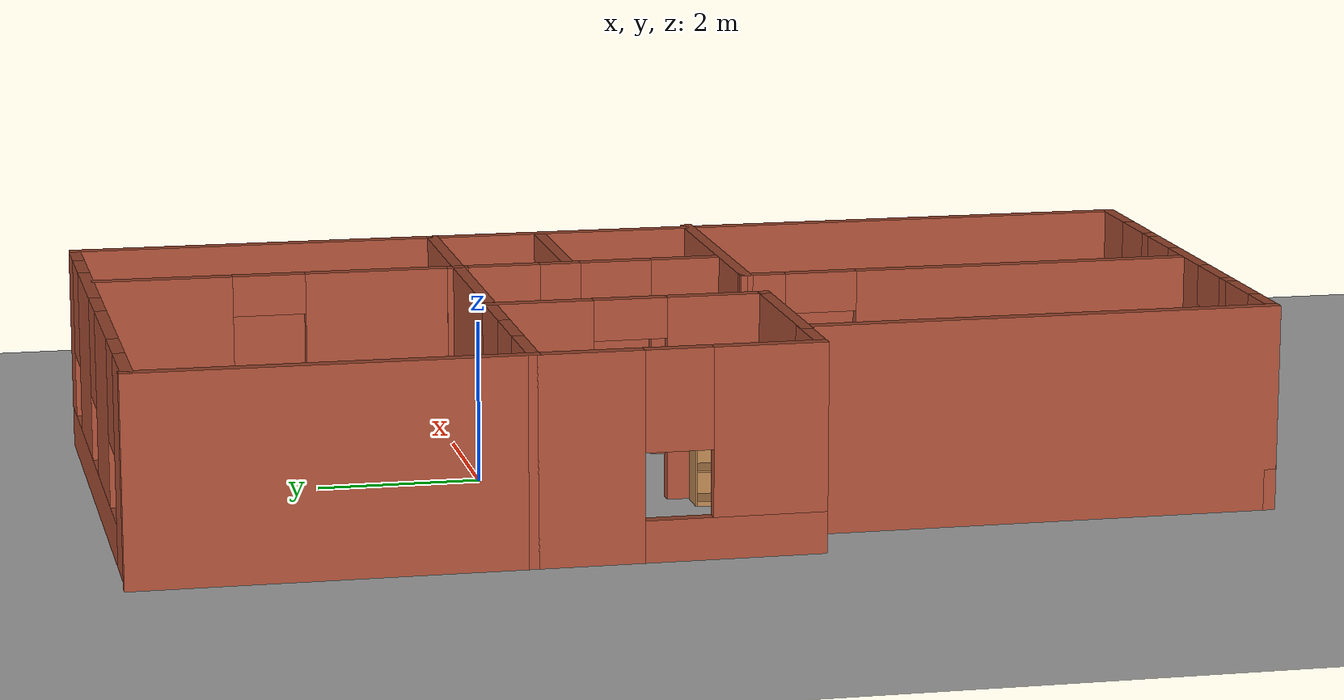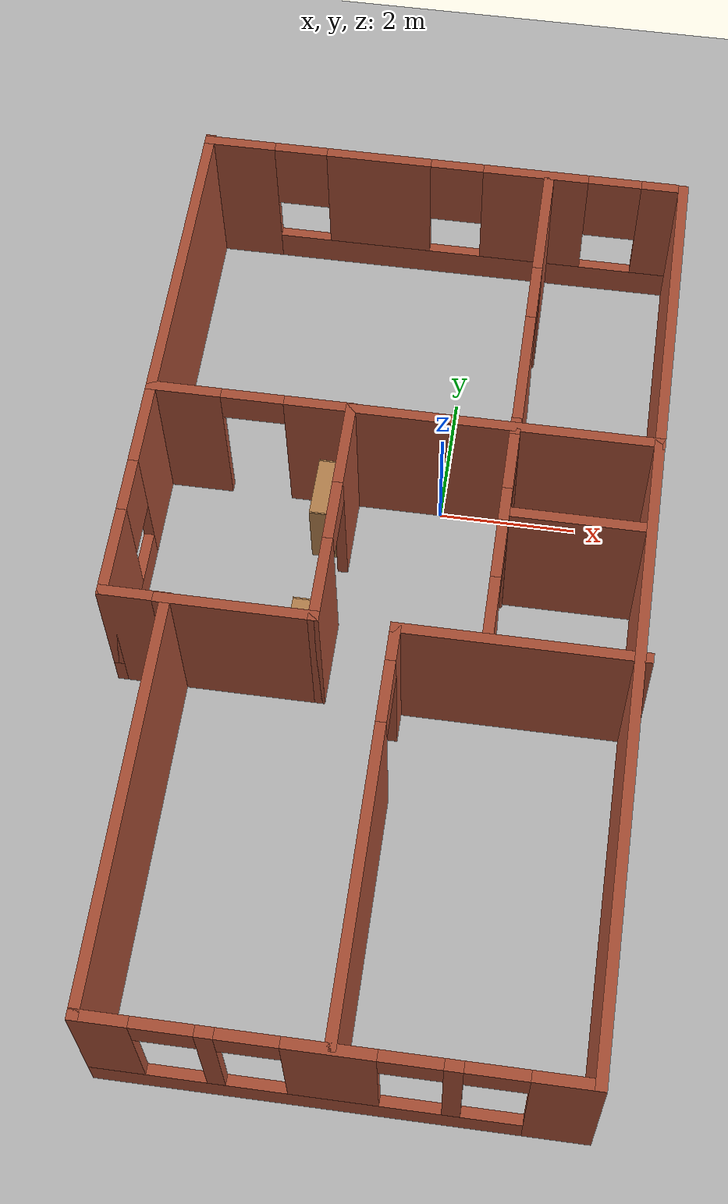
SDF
<sdf version="1.7">
 <world name="MyWorld3">
  <include><uri>model://ground_plane</uri></include>
  <include><uri>model://sun</uri></include>
  <gravity>0 0 -9.8</gravity>
  <magnetic_field>6e-06 2.3e-05 -4.2e-05</magnetic_field>
  <atmosphere type="adiabatic"/>
  <physics type="ode">
   <max_step_size>0.001</max_step_size>
   <real_time_factor>1</real_time_factor>
   <real_time_update_rate>1000</real_time_update_rate>
  </physics>
  <scene><ambient>0.4 0.4 0.4 1</ambient><background>0.7 0.7 0.7 1</background><shadows>true</shadows></scene>
  <audio><device>default</device></audio>
  <spherical_coordinates>
   <surface_model>EARTH_WGS84</surface_model>
   <latitude_deg>0</latitude_deg>
   <longitude_deg>0</longitude_deg>
   <elevation>0</elevation>
   <heading_deg>0</heading_deg>
  </spherical_coordinates>
  <model name="MyWorld3">
   <pose>-0.571805 0.237832 0 0 -0 0</pose>
   <link name="Wall_0">
    <pose>-2.17233 -0.155102 0 0 -0 0.000109</pose>
    <visual name="Wall_0_Visual_0">
     <pose>-0.971919 0 1.25 0 -0 0</pose>
     <geometry><box><size>1.07872 0.15 2.5</size></box></geometry>
     <material>
      <script><uri>file://media/materials/scripts/gazebo.material</uri><name>Gazebo/Bricks</name></script>
      <ambient>1 1 1 1</ambient>
     </material>
     <meta><layer>0</layer></meta>
    </visual>
    <collision name="Wall_0_Collision_0">
     <geometry><box><size>1.07872 0.15 2.5</size></box></geometry>
     <pose>-0.971919 0 1.25 0 -0 0</pose>
    </collision>
    <visual name="Wall_0_Visual_1">
     <pose>0.989359 0 1.25 0 -0 0</pose>
     <geometry><box><size>1.04384 0.15 2.5</size></box></geometry>
     <material>
      <script><uri>file://media/materials/scripts/gazebo.material</uri><name>Gazebo/Bricks</name></script>
      <ambient>1 1 1 1</ambient>
     </material>
     <meta><layer>0</layer></meta>
    </visual>
    <collision name="Wall_0_Collision_1">
     <geometry><box><size>1.04384 0.15 2.5</size></box></geometry>
     <pose>0.989359 0 1.25 0 -0 0</pose>
    </collision>
    <visual name="Wall_0_Visual_2">
     <pose>0.01744 0 2.25 0 -0 0</pose>
     <geometry><box><size>0.9 0.15 0.5</size></box></geometry>
     <material>
      <script><uri>file://media/materials/scripts/gazebo.material</uri><name>Gazebo/Bricks</name></script>
      <ambient>1 1 1 1</ambient>
     </material>
     <meta><layer>0</layer></meta>
    </visual>
    <collision name="Wall_0_Collision_2">
     <geometry><box><size>0.9 0.15 0.5</size></box></geometry>
     <pose>0.01744 0 2.25 0 -0 0</pose>
    </collision>
    <inertial>
     <mass>1</mass>
     <inertia><ixx>1</ixx><ixy>0</ixy><ixz>0</ixz><iyy>1</iyy><iyz>0</iyz><izz>1</izz></inertia>
    </inertial>
   </link>
   <link name="Wall_12">
    <pose>-3.60861 -1.83026 0 0 0 -1.5708</pose>
    <visual name="Wall_12_Visual_0">
     <pose>-1.07365 0 1.25 0 -0 0</pose>
     <geometry><box><size>1.3527 0.15 2.5</size></box></geometry>
     <material>
      <script><uri>file://media/materials/scripts/gazebo.material</uri><name>Gazebo/Bricks</name></script>
      <ambient>1 1 1 1</ambient>
     </material>
     <meta><layer>0</layer></meta>
    </visual>
    <collision name="Wall_12_Collision_0">
     <geometry><box><size>1.3527 0.15 2.5</size></box></geometry>
     <pose>-1.07365 0 1.25 0 -0 0</pose>
    </collision>
    <visual name="Wall_12_Visual_1">
     <pose>0.676352 0 0.25 0 -0 0</pose>
     <geometry><box><size>2.1473 0.15 0.5</size></box></geometry>
     <material>
      <script><uri>file://media/materials/scripts/gazebo.material</uri><name>Gazebo/Bricks</name></script>
      <ambient>1 1 1 1</ambient>
     </material>
     <meta><layer>0</layer></meta>
    </visual>
    <collision name="Wall_12_Collision_1">
     <geometry><box><size>2.1473 0.15 0.5</size></box></geometry>
     <pose>0.676352 0 0.25 0 -0 0</pose>
    </collision>
    <visual name="Wall_12_Visual_2">
     <pose>1.07635 0 1.5 0 -0 0</pose>
     <geometry><box><size>1.3473 0.15 2</size></box></geometry>
     <material>
      <script><uri>file://media/materials/scripts/gazebo.material</uri><name>Gazebo/Bricks</name></script>
      <ambient>1 1 1 1</ambient>
     </material>
     <meta><layer>0</layer></meta>
    </visual>
    <collision name="Wall_12_Collision_2">
     <geometry><box><size>1.3473 0.15 2</size></box></geometry>
     <pose>1.07635 0 1.5 0 -0 0</pose>
    </collision>
    <visual name="Wall_12_Visual_3">
     <pose>0.002703 0 1.9 0 -0 0</pose>
     <geometry><box><size>0.8 0.15 1.2</size></box></geometry>
     <material>
      <script><uri>file://media/materials/scripts/gazebo.material</uri><name>Gazebo/Bricks</name></script>
      <ambient>1 1 1 1</ambient>
     </material>
     <meta><layer>0</layer></meta>
    </visual>
    <collision name="Wall_12_Collision_3">
     <geometry><box><size>0.8 0.15 1.2</size></box></geometry>
     <pose>0.002703 0 1.9 0 -0 0</pose>
    </collision>
    <inertial>
     <mass>1</mass>
     <inertia><ixx>1</ixx><ixy>0</ixy><ixz>0</ixz><iyy>1</iyy><iyz>0</iyz><izz>1</izz></inertia>
    </inertial>
   </link>
   <link name="Wall_13">
    <collision name="Wall_13_Collision">
     <geometry><box><size>1 0.15 2.5</size></box></geometry>
     <pose>0 0 1.25 0 -0 0</pose>
    </collision>
    <visual name="Wall_13_Visual">
     <pose>0 0 1.25 0 -0 0</pose>
     <geometry><box><size>1 0.15 2.5</size></box></geometry>
     <material>
      <script><uri>file://media/materials/scripts/gazebo.material</uri><name>Gazebo/Bricks</name></script>
      <ambient>1 1 1 1</ambient>
     </material>
     <meta><layer>0</layer></meta>
    </visual>
    <pose>-3.18361 -3.50526 0 0 -0 0</pose>
    <inertial>
     <mass>1</mass>
     <inertia><ixx>1</ixx><ixy>0</ixy><ixz>0</ixz><iyy>1</iyy><iyz>0</iyz><izz>1</izz></inertia>
    </inertial>
   </link>
   <link name="Wall_3">
    <collision name="Wall_3_Collision">
     <geometry><box><size>4.75 0.15 2.5</size></box></geometry>
     <pose>0 0 1.25 0 -0 0</pose>
    </collision>
    <visual name="Wall_3_Visual">
     <pose>0 0 1.25 0 -0 0</pose>
     <geometry><box><size>4.75 0.15 2.5</size></box></geometry>
     <material>
      <script><uri>file://media/materials/scripts/gazebo.material</uri><name>Gazebo/Bricks</name></script>
      <ambient>1 1 1 1</ambient>
     </material>
     <meta><layer>0</layer></meta>
    </visual>
    <pose>-3.60861 2.14474 0 0 -0 1.5708</pose>
    <inertial>
     <mass>1</mass>
     <inertia><ixx>1</ixx><ixy>0</ixy><ixz>0</ixz><iyy>1</iyy><iyz>0</iyz><izz>1</izz></inertia>
    </inertial>
   </link>
   <link name="Wall_5">
    <collision name="Wall_5_Collision">
     <geometry><box><size>4.75 0.15 2.5</size></box></geometry>
     <pose>0 0 1.25 0 -0 0</pose>
    </collision>
    <visual name="Wall_5_Visual">
     <pose>0 0 1.25 0 -0 0</pose>
     <geometry><box><size>4.75 0.15 2.5</size></box></geometry>
     <material>
      <script><uri>file://media/materials/scripts/gazebo.material</uri><name>Gazebo/Bricks</name></script>
      <ambient>1 1 1 1</ambient>
     </material>
     <meta><layer>0</layer></meta>
    </visual>
    <pose>3.60861 2.11175 0 0 -0 1.5708</pose>
    <inertial>
     <mass>1</mass>
     <inertia><ixx>1</ixx><ixy>0</ixy><ixz>0</ixz><iyy>1</iyy><iyz>0</iyz><izz>1</izz></inertia>
    </inertial>
   </link>
   <link name="Wall_7">
    <pose>-0.072329 4.42218 0 0 -0 0</pose>
    <visual name="Wall_7_Visual_0">
     <pose>-3.06948 0 1.25 0 -0 0</pose>
     <geometry><box><size>1.08359 0.15 2.5</size></box></geometry>
     <material>
      <script><uri>file://media/materials/scripts/gazebo.material</uri><name>Gazebo/Bricks</name></script>
      <ambient>1 1 1 1</ambient>
     </material>
     <meta><layer>0</layer></meta>
    </visual>
    <collision name="Wall_7_Collision_0">
     <geometry><box><size>1.08359 0.15 2.5</size></box></geometry>
     <pose>-3.06948 0 1.25 0 -0 0</pose>
    </collision>
    <visual name="Wall_7_Visual_1">
     <pose>0.541795 0 0.25 0 -0 0</pose>
     <geometry><box><size>6.13897 0.15 0.5</size></box></geometry>
     <material>
      <script><uri>file://media/materials/scripts/gazebo.material</uri><name>Gazebo/Bricks</name></script>
      <ambient>1 1 1 1</ambient>
     </material>
     <meta><layer>0</layer></meta>
    </visual>
    <collision name="Wall_7_Collision_1">
     <geometry><box><size>6.13897 0.15 0.5</size></box></geometry>
     <pose>0.541795 0 0.25 0 -0 0</pose>
    </collision>
    <visual name="Wall_7_Visual_2">
     <pose>-0.932209 0 1.5 0 -0 0</pose>
     <geometry><box><size>1.59096 0.15 2</size></box></geometry>
     <material>
      <script><uri>file://media/materials/scripts/gazebo.material</uri><name>Gazebo/Bricks</name></script>
      <ambient>1 1 1 1</ambient>
     </material>
     <meta><layer>0</layer></meta>
    </visual>
    <collision name="Wall_7_Collision_2">
     <geometry><box><size>1.59096 0.15 2</size></box></geometry>
     <pose>-0.932209 0 1.5 0 -0 0</pose>
    </collision>
    <visual name="Wall_7_Visual_3">
     <pose>1.45875 0 1.5 0 -0 0</pose>
     <geometry><box><size>1.59096 0.15 2</size></box></geometry>
     <material>
      <script><uri>file://media/materials/scripts/gazebo.material</uri><name>Gazebo/Bricks</name></script>
      <ambient>1 1 1 1</ambient>
     </material>
     <meta><layer>0</layer></meta>
    </visual>
    <collision name="Wall_7_Collision_3">
     <geometry><box><size>1.59096 0.15 2</size></box></geometry>
     <pose>1.45875 0 1.5 0 -0 0</pose>
    </collision>
    <visual name="Wall_7_Visual_4">
     <pose>3.33275 0 1.5 0 -0 0</pose>
     <geometry><box><size>0.557048 0.15 2</size></box></geometry>
     <material>
      <script><uri>file://media/materials/scripts/gazebo.material</uri><name>Gazebo/Bricks</name></script>
      <ambient>1 1 1 1</ambient>
     </material>
     <meta><layer>0</layer></meta>
    </visual>
    <collision name="Wall_7_Collision_4">
     <geometry><box><size>0.557048 0.15 2</size></box></geometry>
     <pose>3.33275 0 1.5 0 -0 0</pose>
    </collision>
    <visual name="Wall_7_Visual_5">
     <pose>-2.12769 0 1.9 0 -0 0</pose>
     <geometry><box><size>0.8 0.15 1.2</size></box></geometry>
     <material>
      <script><uri>file://media/materials/scripts/gazebo.material</uri><name>Gazebo/Bricks</name></script>
      <ambient>1 1 1 1</ambient>
     </material>
     <meta><layer>0</layer></meta>
    </visual>
    <collision name="Wall_7_Collision_5">
     <geometry><box><size>0.8 0.15 1.2</size></box></geometry>
     <pose>-2.12769 0 1.9 0 -0 0</pose>
    </collision>
    <visual name="Wall_7_Visual_6">
     <pose>0.263271 0 1.9 0 -0 0</pose>
     <geometry><box><size>0.8 0.15 1.2</size></box></geometry>
     <material>
      <script><uri>file://media/materials/scripts/gazebo.material</uri><name>Gazebo/Bricks</name></script>
      <ambient>1 1 1 1</ambient>
     </material>
     <meta><layer>0</layer></meta>
    </visual>
    <collision name="Wall_7_Collision_6">
     <geometry><box><size>0.8 0.15 1.2</size></box></geometry>
     <pose>0.263271 0 1.9 0 -0 0</pose>
    </collision>
    <visual name="Wall_7_Visual_7">
     <pose>2.65423 0 1.9 0 -0 0</pose>
     <geometry><box><size>0.8 0.15 1.2</size></box></geometry>
     <material>
      <script><uri>file://media/materials/scripts/gazebo.material</uri><name>Gazebo/Bricks</name></script>
      <ambient>1 1 1 1</ambient>
     </material>
     <meta><layer>0</layer></meta>
    </visual>
    <collision name="Wall_7_Collision_7">
     <geometry><box><size>0.8 0.15 1.2</size></box></geometry>
     <pose>2.65423 0 1.9 0 -0 0</pose>
    </collision>
    <inertial>
     <mass>1</mass>
     <inertia><ixx>1</ixx><ixy>0</ixy><ixz>0</ixz><iyy>1</iyy><iyz>0</iyz><izz>1</izz></inertia>
    </inertial>
   </link>
   <link name="Wall_9">
    <pose>1.58943 2.12546 0 0 -0 1.5708</pose>
    <visual name="Wall_9_Visual_0">
     <pose>-1.30969 0 1.25 0 -0 0</pose>
     <geometry><box><size>1.88062 0.15 2.5</size></box></geometry>
     <material>
      <script><uri>file://media/materials/scripts/gazebo.material</uri><name>Gazebo/Bricks</name></script>
      <ambient>1 1 1 1</ambient>
     </material>
     <meta><layer>0</layer></meta>
    </visual>
    <collision name="Wall_9_Collision_0">
     <geometry><box><size>1.88062 0.15 2.5</size></box></geometry>
     <pose>-1.30969 0 1.25 0 -0 0</pose>
    </collision>
    <visual name="Wall_9_Visual_1">
     <pose>1.39031 0 1.25 0 -0 0</pose>
     <geometry><box><size>1.71938 0.15 2.5</size></box></geometry>
     <material>
      <script><uri>file://media/materials/scripts/gazebo.material</uri><name>Gazebo/Bricks</name></script>
      <ambient>1 1 1 1</ambient>
     </material>
     <meta><layer>0</layer></meta>
    </visual>
    <collision name="Wall_9_Collision_1">
     <geometry><box><size>1.71938 0.15 2.5</size></box></geometry>
     <pose>1.39031 0 1.25 0 -0 0</pose>
    </collision>
    <visual name="Wall_9_Visual_2">
     <pose>0.080623 0 2.25 0 -0 0</pose>
     <geometry><box><size>0.9 0.15 0.5</size></box></geometry>
     <material>
      <script><uri>file://media/materials/scripts/gazebo.material</uri><name>Gazebo/Bricks</name></script>
      <ambient>1 1 1 1</ambient>
     </material>
     <meta><layer>0</layer></meta>
    </visual>
    <collision name="Wall_9_Collision_2">
     <geometry><box><size>0.9 0.15 0.5</size></box></geometry>
     <pose>0.080623 0 2.25 0 -0 0</pose>
    </collision>
    <inertial>
     <mass>1</mass>
     <inertia><ixx>1</ixx><ixy>0</ixy><ixz>0</ixz><iyy>1</iyy><iyz>0</iyz><izz>1</izz></inertia>
    </inertial>
   </link>
   <static>true</static>
  </model>
  <model name="MyWorld2">
   <pose>-0.141275 -4.43804 0 0 -0 0</pose>
   <link name="Wall_0">
    <collision name="Wall_0_Collision">
     <geometry><box><size>2.25 0.15 2.5</size></box></geometry>
     <pose>0 0 1.25 0 -0 0</pose>
    </collision>
    <visual name="Wall_0_Visual">
     <pose>0 0 1.25 0 -0 0</pose>
     <geometry><box><size>2.25 0.15 2.5</size></box></geometry>
     <material>
      <script><uri>file://media/materials/scripts/gazebo.material</uri><name>Gazebo/Bricks</name></script>
      <ambient>1 1 1 1</ambient>
     </material>
     <meta><layer>0</layer></meta>
    </visual>
    <pose>-2.22676 1.16321 0 0 -0 0</pose>
    <inertial>
     <mass>1</mass>
     <inertia><ixx>1</ixx><ixy>0</ixy><ixz>0</ixz><iyy>1</iyy><iyz>0</iyz><izz>1</izz></inertia>
    </inertial>
   </link>
   <link name="Wall_1">
    <pose>-1.17676 2.83821 0 0 -0 1.5708</pose>
    <visual name="Wall_1_Visual_0">
     <pose>-1.10743 0 1.25 0 -0 0</pose>
     <geometry><box><size>1.28514 0.15 2.5</size></box></geometry>
     <material>
      <script><uri>file://media/materials/scripts/gazebo.material</uri><name>Gazebo/Bricks</name></script>
      <ambient>1 1 1 1</ambient>
     </material>
     <meta><layer>0</layer></meta>
    </visual>
    <collision name="Wall_1_Collision_0">
     <geometry><box><size>1.28514 0.15 2.5</size></box></geometry>
     <pose>-1.10743 0 1.25 0 -0 0</pose>
    </collision>
    <visual name="Wall_1_Visual_1">
     <pose>1.09257 0 1.25 0 -0 0</pose>
     <geometry><box><size>1.31486 0.15 2.5</size></box></geometry>
     <material>
      <script><uri>file://media/materials/scripts/gazebo.material</uri><name>Gazebo/Bricks</name></script>
      <ambient>1 1 1 1</ambient>
     </material>
     <meta><layer>0</layer></meta>
    </visual>
    <collision name="Wall_1_Collision_1">
     <geometry><box><size>1.31486 0.15 2.5</size></box></geometry>
     <pose>1.09257 0 1.25 0 -0 0</pose>
    </collision>
    <visual name="Wall_1_Visual_2">
     <pose>-0.014862 0 2.25 0 -0 0</pose>
     <geometry><box><size>0.9 0.15 0.5</size></box></geometry>
     <material>
      <script><uri>file://media/materials/scripts/gazebo.material</uri><name>Gazebo/Bricks</name></script>
      <ambient>1 1 1 1</ambient>
     </material>
     <meta><layer>0</layer></meta>
    </visual>
    <collision name="Wall_1_Collision_2">
     <geometry><box><size>0.9 0.15 0.5</size></box></geometry>
     <pose>-0.014862 0 2.25 0 -0 0</pose>
    </collision>
    <inertial>
     <mass>1</mass>
     <inertia><ixx>1</ixx><ixy>0</ixy><ixz>0</ixz><iyy>1</iyy><iyz>0</iyz><izz>1</izz></inertia>
    </inertial>
   </link>
   <link name="Wall_10">
    <collision name="Wall_10_Collision">
     <geometry><box><size>3.5 0.15 2.5</size></box></geometry>
     <pose>0 0 1.25 0 -0 0</pose>
    </collision>
    <visual name="Wall_10_Visual">
     <pose>0 0 1.25 0 -0 0</pose>
     <geometry><box><size>3.5 0.15 2.5</size></box></geometry>
     <material>
      <script><uri>file://media/materials/scripts/gazebo.material</uri><name>Gazebo/Bricks</name></script>
      <ambient>1 1 1 1</ambient>
     </material>
     <meta><layer>0</layer></meta>
    </visual>
    <pose>1.60176 1.1345 0 0 -0 0</pose>
    <inertial>
     <mass>1</mass>
     <inertia><ixx>1</ixx><ixy>0</ixy><ixz>0</ixz><iyy>1</iyy><iyz>0</iyz><izz>1</izz></inertia>
    </inertial>
   </link>
   <link name="Wall_12">
    <pose>1.15028 2.91224 0 0 0 -1.5708</pose>
    <visual name="Wall_12_Visual_0">
     <pose>-1.61566 0 1.25 0 -0 0</pose>
     <geometry><box><size>0.268688 0.15 2.5</size></box></geometry>
     <material>
      <script><uri>file://media/materials/scripts/gazebo.material</uri><name>Gazebo/Bricks</name></script>
      <ambient>1 1 1 1</ambient>
     </material>
     <meta><layer>0</layer></meta>
    </visual>
    <collision name="Wall_12_Collision_0">
     <geometry><box><size>0.268688 0.15 2.5</size></box></geometry>
     <pose>-1.61566 0 1.25 0 -0 0</pose>
    </collision>
    <visual name="Wall_12_Visual_1">
     <pose>-0.323256 0 1.25 0 -0 0</pose>
     <geometry><box><size>0.516113 0.15 2.5</size></box></geometry>
     <material>
      <script><uri>file://media/materials/scripts/gazebo.material</uri><name>Gazebo/Bricks</name></script>
      <ambient>1 1 1 1</ambient>
     </material>
     <meta><layer>0</layer></meta>
    </visual>
    <collision name="Wall_12_Collision_1">
     <geometry><box><size>0.516113 0.15 2.5</size></box></geometry>
     <pose>-0.323256 0 1.25 0 -0 0</pose>
    </collision>
    <visual name="Wall_12_Visual_2">
     <pose>1.2924 0 1.25 0 -0 0</pose>
     <geometry><box><size>0.915199 0.15 2.5</size></box></geometry>
     <material>
      <script><uri>file://media/materials/scripts/gazebo.material</uri><name>Gazebo/Bricks</name></script>
      <ambient>1 1 1 1</ambient>
     </material>
     <meta><layer>0</layer></meta>
    </visual>
    <collision name="Wall_12_Collision_2">
     <geometry><box><size>0.915199 0.15 2.5</size></box></geometry>
     <pose>1.2924 0 1.25 0 -0 0</pose>
    </collision>
    <visual name="Wall_12_Visual_3">
     <pose>-1.03131 0 2.25 0 -0 0</pose>
     <geometry><box><size>0.9 0.15 0.5</size></box></geometry>
     <material>
      <script><uri>file://media/materials/scripts/gazebo.material</uri><name>Gazebo/Bricks</name></script>
      <ambient>1 1 1 1</ambient>
     </material>
     <meta><layer>0</layer></meta>
    </visual>
    <collision name="Wall_12_Collision_3">
     <geometry><box><size>0.9 0.15 0.5</size></box></geometry>
     <pose>-1.03131 0 2.25 0 -0 0</pose>
    </collision>
    <visual name="Wall_12_Visual_4">
     <pose>0.384801 0 2.25 0 -0 0</pose>
     <geometry><box><size>0.9 0.15 0.5</size></box></geometry>
     <material>
      <script><uri>file://media/materials/scripts/gazebo.material</uri><name>Gazebo/Bricks</name></script>
      <ambient>1 1 1 1</ambient>
     </material>
     <meta><layer>0</layer></meta>
    </visual>
    <collision name="Wall_12_Collision_4">
     <geometry><box><size>0.9 0.15 0.5</size></box></geometry>
     <pose>0.384801 0 2.25 0 -0 0</pose>
    </collision>
    <inertial>
     <mass>1</mass>
     <inertia><ixx>1</ixx><ixy>0</ixy><ixz>0</ixz><iyy>1</iyy><iyz>0</iyz><izz>1</izz></inertia>
    </inertial>
   </link>
   <link name="Wall_14">
    <collision name="Wall_14_Collision">
     <geometry><box><size>2 0.15 2.5</size></box></geometry>
     <pose>0 0 1.25 0 -0 0</pose>
    </collision>
    <visual name="Wall_14_Visual">
     <pose>0 0 1.25 0 -0 0</pose>
     <geometry><box><size>2 0.15 2.5</size></box></geometry>
     <material>
      <script><uri>file://media/materials/scripts/gazebo.material</uri><name>Gazebo/Bricks</name></script>
      <ambient>1 1 1 1</ambient>
     </material>
     <meta><layer>0</layer></meta>
    </visual>
    <pose>2.20616 3.11944 0 0 -0 0</pose>
    <inertial>
     <mass>1</mass>
     <inertia><ixx>1</ixx><ixy>0</ixy><ixz>0</ixz><iyy>1</iyy><iyz>0</iyz><izz>1</izz></inertia>
    </inertial>
   </link>
   <link name="Wall_2">
    <collision name="Wall_2_Collision">
     <geometry><box><size>4.5 0.15 2.5</size></box></geometry>
     <pose>0 0 1.25 0 -0 0</pose>
    </collision>
    <visual name="Wall_2_Visual">
     <pose>0 0 1.25 0 -0 0</pose>
     <geometry><box><size>4.5 0.15 2.5</size></box></geometry>
     <material>
      <script><uri>file://media/materials/scripts/gazebo.material</uri><name>Gazebo/Bricks</name></script>
      <ambient>1 1 1 1</ambient>
     </material>
     <meta><layer>0</layer></meta>
    </visual>
    <pose>0.998242 4.51321 0 0 -0 0</pose>
    <inertial>
     <mass>1</mass>
     <inertia><ixx>1</ixx><ixy>0</ixy><ixz>0</ixz><iyy>1</iyy><iyz>0</iyz><izz>1</izz></inertia>
    </inertial>
   </link>
   <link name="Wall_3">
    <collision name="Wall_3_Collision">
     <geometry><box><size>9.25 0.15 2.5</size></box></geometry>
     <pose>0 0 1.25 0 -0 0</pose>
    </collision>
    <visual name="Wall_3_Visual">
     <pose>0 0 1.25 0 -0 0</pose>
     <geometry><box><size>9.25 0.15 2.5</size></box></geometry>
     <material>
      <script><uri>file://media/materials/scripts/gazebo.material</uri><name>Gazebo/Bricks</name></script>
      <ambient>1 1 1 1</ambient>
     </material>
     <meta><layer>0</layer></meta>
    </visual>
    <pose>3.17336 -0.037017 0 0 0 -1.57077</pose>
    <inertial>
     <mass>1</mass>
     <inertia><ixx>1</ixx><ixy>0</ixy><ixz>0</ixz><iyy>1</iyy><iyz>0</iyz><izz>1</izz></inertia>
    </inertial>
   </link>
   <link name="Wall_4">
    <pose>-0.001516 -4.58724 0 0 -0 3.14159</pose>
    <visual name="Wall_4_Visual_0">
     <pose>-2.79876 0 1.25 0 -0 0</pose>
     <geometry><box><size>0.902483 0.15 2.5</size></box></geometry>
     <material>
      <script><uri>file://media/materials/scripts/gazebo.material</uri><name>Gazebo/Bricks</name></script>
      <ambient>1 1 1 1</ambient>
     </material>
     <meta><layer>0</layer></meta>
    </visual>
    <collision name="Wall_4_Collision_0">
     <geometry><box><size>0.902483 0.15 2.5</size></box></geometry>
     <pose>-2.79876 0 1.25 0 -0 0</pose>
    </collision>
    <visual name="Wall_4_Visual_1">
     <pose>0.451241 0 0.25 0 -0 0</pose>
     <geometry><box><size>5.59752 0.15 0.5</size></box></geometry>
     <material>
      <script><uri>file://media/materials/scripts/gazebo.material</uri><name>Gazebo/Bricks</name></script>
      <ambient>1 1 1 1</ambient>
     </material>
     <meta><layer>0</layer></meta>
    </visual>
    <collision name="Wall_4_Collision_1">
     <geometry><box><size>5.59752 0.15 0.5</size></box></geometry>
     <pose>0.451241 0 0.25 0 -0 0</pose>
    </collision>
    <visual name="Wall_4_Visual_2">
     <pose>-1.42872 0 1.5 0 -0 0</pose>
     <geometry><box><size>0.237586 0.15 2</size></box></geometry>
     <material>
      <script><uri>file://media/materials/scripts/gazebo.material</uri><name>Gazebo/Bricks</name></script>
      <ambient>1 1 1 1</ambient>
     </material>
     <meta><layer>0</layer></meta>
    </visual>
    <collision name="Wall_4_Collision_2">
     <geometry><box><size>0.237586 0.15 2</size></box></geometry>
     <pose>-1.42872 0 1.5 0 -0 0</pose>
    </collision>
    <visual name="Wall_4_Visual_3">
     <pose>0.075776 0 1.5 0 -0 0</pose>
     <geometry><box><size>1.17141 0.15 2</size></box></geometry>
     <material>
      <script><uri>file://media/materials/scripts/gazebo.material</uri><name>Gazebo/Bricks</name></script>
      <ambient>1 1 1 1</ambient>
     </material>
     <meta><layer>0</layer></meta>
    </visual>
    <collision name="Wall_4_Collision_3">
     <geometry><box><size>1.17141 0.15 2</size></box></geometry>
     <pose>0.075776 0 1.5 0 -0 0</pose>
    </collision>
    <visual name="Wall_4_Visual_4">
     <pose>1.58028 0 1.5 0 -0 0</pose>
     <geometry><box><size>0.237586 0.15 2</size></box></geometry>
     <material>
      <script><uri>file://media/materials/scripts/gazebo.material</uri><name>Gazebo/Bricks</name></script>
      <ambient>1 1 1 1</ambient>
     </material>
     <meta><layer>0</layer></meta>
    </visual>
    <collision name="Wall_4_Collision_4">
     <geometry><box><size>0.237586 0.15 2</size></box></geometry>
     <pose>1.58028 0 1.5 0 -0 0</pose>
    </collision>
    <visual name="Wall_4_Visual_5">
     <pose>2.87453 0 1.5 0 -0 0</pose>
     <geometry><box><size>0.750931 0.15 2</size></box></geometry>
     <material>
      <script><uri>file://media/materials/scripts/gazebo.material</uri><name>Gazebo/Bricks</name></script>
      <ambient>1 1 1 1</ambient>
     </material>
     <meta><layer>0</layer></meta>
    </visual>
    <collision name="Wall_4_Collision_5">
     <geometry><box><size>0.750931 0.15 2</size></box></geometry>
     <pose>2.87453 0 1.5 0 -0 0</pose>
    </collision>
    <visual name="Wall_4_Visual_6">
     <pose>-1.94752 0 2.25 0 -0 0</pose>
     <geometry><box><size>0.8 0.15 0.5</size></box></geometry>
     <material>
      <script><uri>file://media/materials/scripts/gazebo.material</uri><name>Gazebo/Bricks</name></script>
      <ambient>1 1 1 1</ambient>
     </material>
     <meta><layer>0</layer></meta>
    </visual>
    <collision name="Wall_4_Collision_6">
     <geometry><box><size>0.8 0.15 0.5</size></box></geometry>
     <pose>-1.94752 0 2.25 0 -0 0</pose>
    </collision>
    <visual name="Wall_4_Visual_7">
     <pose>-0.909931 0 2.25 0 -0 0</pose>
     <geometry><box><size>0.8 0.15 0.5</size></box></geometry>
     <material>
      <script><uri>file://media/materials/scripts/gazebo.material</uri><name>Gazebo/Bricks</name></script>
      <ambient>1 1 1 1</ambient>
     </material>
     <meta><layer>0</layer></meta>
    </visual>
    <collision name="Wall_4_Collision_7">
     <geometry><box><size>0.8 0.15 0.5</size></box></geometry>
     <pose>-0.909931 0 2.25 0 -0 0</pose>
    </collision>
    <visual name="Wall_4_Visual_8">
     <pose>1.06148 0 2.25 0 -0 0</pose>
     <geometry><box><size>0.8 0.15 0.5</size></box></geometry>
     <material>
      <script><uri>file://media/materials/scripts/gazebo.material</uri><name>Gazebo/Bricks</name></script>
      <ambient>1 1 1 1</ambient>
     </material>
     <meta><layer>0</layer></meta>
    </visual>
    <collision name="Wall_4_Collision_8">
     <geometry><box><size>0.8 0.15 0.5</size></box></geometry>
     <pose>1.06148 0 2.25 0 -0 0</pose>
    </collision>
    <visual name="Wall_4_Visual_9">
     <pose>2.09907 0 2.25 0 -0 0</pose>
     <geometry><box><size>0.8 0.15 0.5</size></box></geometry>
     <material>
      <script><uri>file://media/materials/scripts/gazebo.material</uri><name>Gazebo/Bricks</name></script>
      <ambient>1 1 1 1</ambient>
     </material>
     <meta><layer>0</layer></meta>
    </visual>
    <collision name="Wall_4_Collision_9">
     <geometry><box><size>0.8 0.15 0.5</size></box></geometry>
     <pose>2.09907 0 2.25 0 -0 0</pose>
    </collision>
    <inertial>
     <mass>1</mass>
     <inertia><ixx>1</ixx><ixy>0</ixy><ixz>0</ixz><iyy>1</iyy><iyz>0</iyz><izz>1</izz></inertia>
    </inertial>
   </link>
   <link name="Wall_5">
    <collision name="Wall_5_Collision">
     <geometry><box><size>5.75 0.15 2.5</size></box></geometry>
     <pose>0 0 1.25 0 -0 0</pose>
    </collision>
    <visual name="Wall_5_Visual">
     <pose>0 0 1.25 0 -0 0</pose>
     <geometry><box><size>5.75 0.15 2.5</size></box></geometry>
     <material>
      <script><uri>file://media/materials/scripts/gazebo.material</uri><name>Gazebo/Bricks</name></script>
      <ambient>1 1 1 1</ambient>
     </material>
     <meta><layer>0</layer></meta>
    </visual>
    <pose>-3.17664 -1.78702 0 0 -0 1.57084</pose>
    <inertial>
     <mass>1</mass>
     <inertia><ixx>1</ixx><ixy>0</ixy><ixz>0</ixz><iyy>1</iyy><iyz>0</iyz><izz>1</izz></inertia>
    </inertial>
   </link>
   <link name="Wall_9">
    <pose>-0.066741 -1.70451 0 0 -0 1.57309</pose>
    <visual name="Wall_9_Visual_0">
     <pose>-0.734416 0 1.25 0 -0 0</pose>
     <geometry><box><size>4.3592 0.15 2.5</size></box></geometry>
     <material>
      <script><uri>file://media/materials/scripts/gazebo.material</uri><name>Gazebo/Bricks</name></script>
      <ambient>1 1 1 1</ambient>
     </material>
     <meta><layer>0</layer></meta>
    </visual>
    <collision name="Wall_9_Collision_0">
     <geometry><box><size>4.3592 0.15 2.5</size></box></geometry>
     <pose>-0.734416 0 1.25 0 -0 0</pose>
    </collision>
    <visual name="Wall_9_Visual_1">
     <pose>2.6296 0 1.25 0 -0 0</pose>
     <geometry><box><size>0.568832 0.15 2.5</size></box></geometry>
     <material>
      <script><uri>file://media/materials/scripts/gazebo.material</uri><name>Gazebo/Bricks</name></script>
      <ambient>1 1 1 1</ambient>
     </material>
     <meta><layer>0</layer></meta>
    </visual>
    <collision name="Wall_9_Collision_1">
     <geometry><box><size>0.568832 0.15 2.5</size></box></geometry>
     <pose>2.6296 0 1.25 0 -0 0</pose>
    </collision>
    <visual name="Wall_9_Visual_2">
     <pose>1.89518 0 2.25 0 -0 0</pose>
     <geometry><box><size>0.9 0.15 0.5</size></box></geometry>
     <material>
      <script><uri>file://media/materials/scripts/gazebo.material</uri><name>Gazebo/Bricks</name></script>
      <ambient>1 1 1 1</ambient>
     </material>
     <meta><layer>0</layer></meta>
    </visual>
    <collision name="Wall_9_Collision_2">
     <geometry><box><size>0.9 0.15 0.5</size></box></geometry>
     <pose>1.89518 0 2.25 0 -0 0</pose>
    </collision>
    <inertial>
     <mass>1</mass>
     <inertia><ixx>1</ixx><ixy>0</ixy><ixz>0</ixz><iyy>1</iyy><iyz>0</iyz><izz>1</izz></inertia>
    </inertial>
   </link>
   <static>true</static>
  </model>
  <model name="ground_plane">
   <static>true</static>
   <link name="link">
    <collision name="collision">
     <geometry><plane><normal>0 0 1</normal><size>100 100</size></plane></geometry>
     <surface><friction><ode><mu>100</mu><mu2>50</mu2></ode></friction></surface>
    </collision>
    <visual name="visual">
     <cast_shadows>false</cast_shadows>
     <geometry><plane><normal>0 0 1</normal><size>100 100</size></plane></geometry>
     <material>
      <ambient>0.3 0.3 0.3 1</ambient>
      <diffuse>0.7 0.7 0.7 1</diffuse>
      <specular>0.01 0.01 0.01 1</specular>
     </material>
    </visual>
    <inertial>
     <mass>1</mass>
     <inertia><ixx>1</ixx><ixy>0</ixy><ixz>0</ixz><iyy>1</iyy><iyz>0</iyz><izz>1</izz></inertia>
    </inertial>
   </link>
   <pose>-4.36783 -10.4239 0 0 -0 0</pose>
  </model>
  <model name="Bookshelf">
   <static>true</static>
   <link name="link">
    <inertial>
     <mass>1</mass>
     <inertia><ixx>1</ixx><ixy>0</ixy><ixz>0</ixz><iyy>1</iyy><iyz>0</iyz><izz>1</izz></inertia>
    </inertial>
    <collision name="back">
     <pose>0 0.005 0.6 0 0 0</pose>
     <geometry><box><size>0.9 0.01 1.2</size></box></geometry>
    </collision>
    <visual name="visual1">
     <pose>0 0.005 0.6 0 0 0</pose>
     <geometry><box><size>0.9 0.01 1.2</size></box></geometry>
     <material>
      <diffuse>1 1 1 1</diffuse>
      <script><uri>file://media/materials/scripts/gazebo.material</uri><name>Gazebo/Wood</name></script>
      <pbr>
       <metal>
        <albedo_map>https://fuel.gazebosim.org/1.0/openrobotics/models/bookshelf/4/files/bookshelf_diffuse.jpg</albedo_map>
       </metal>
      </pbr>
     </material>
    </visual>
    <collision name="left_side">
     <pose>0.45 -0.195 0.6 0 0 0</pose>
     <geometry><box><size>0.02 0.4 1.2</size></box></geometry>
    </collision>
    <visual name="visual2">
     <pose>0.45 -0.195 0.6 0 0 0</pose>
     <geometry><box><size>0.02 0.4 1.2</size></box></geometry>
     <material>
      <diffuse>1 1 1 1</diffuse>
      <script><uri>file://media/materials/scripts/gazebo.material</uri><name>Gazebo/Wood</name></script>
      <pbr>
       <metal>
        <albedo_map>https://fuel.gazebosim.org/1.0/openrobotics/models/bookshelf/4/files/bookshelf_diffuse.jpg</albedo_map>
       </metal>
      </pbr>
     </material>
    </visual>
    <collision name="right_side">
     <pose>-0.45 -0.195 0.6 0 0 0</pose>
     <geometry><box><size>0.02 0.4 1.2</size></box></geometry>
    </collision>
    <visual name="visual3">
     <pose>-0.45 -0.195 0.6 0 0 0</pose>
     <geometry><box><size>0.02 0.4 1.2</size></box></geometry>
     <material>
      <diffuse>1 1 1 1</diffuse>
      <script><uri>file://media/materials/scripts/gazebo.material</uri><name>Gazebo/Wood</name></script>
      <pbr>
       <metal>
        <albedo_map>https://fuel.gazebosim.org/1.0/openrobotics/models/bookshelf/4/files/bookshelf_diffuse.jpg</albedo_map>
       </metal>
      </pbr>
     </material>
    </visual>
    <collision name="bottom">
     <pose>0 -0.195 0.03 0 0 0</pose>
     <geometry><box><size>0.88 0.4 0.06</size></box></geometry>
    </collision>
    <visual name="visual4">
     <pose>0 -0.195 0.03 0 0 0</pose>
     <geometry><box><size>0.88 0.4 0.06</size></box></geometry>
     <material>
      <diffuse>1 1 1 1</diffuse>
      <script><uri>file://media/materials/scripts/gazebo.material</uri><name>Gazebo/Wood</name></script>
      <pbr>
       <metal>
        <albedo_map>https://fuel.gazebosim.org/1.0/openrobotics/models/bookshelf/4/files/bookshelf_diffuse.jpg</albedo_map>
       </metal>
      </pbr>
     </material>
    </visual>
    <collision name="top">
     <pose>0 -0.195 1.19 0 0 0</pose>
     <geometry><box><size>0.88 0.4 0.02</size></box></geometry>
    </collision>
    <visual name="visual5">
     <pose>0 -0.195 1.19 0 0 0</pose>
     <geometry><box><size>0.88 0.4 0.02</size></box></geometry>
     <material>
      <diffuse>1 1 1 1</diffuse>
      <script><uri>file://media/materials/scripts/gazebo.material</uri><name>Gazebo/Wood</name></script>
      <pbr>
       <metal>
        <albedo_map>https://fuel.gazebosim.org/1.0/openrobotics/models/bookshelf/4/files/bookshelf_diffuse.jpg</albedo_map>
       </metal>
      </pbr>
     </material>
    </visual>
    <collision name="low_shelf">
     <pose>0 -0.195 0.43 0 0 0</pose>
     <geometry><box><size>0.88 0.4 0.02</size></box></geometry>
    </collision>
    <visual name="visual6">
     <pose>0 -0.195 0.43 0 0 0</pose>
     <geometry><box><size>0.88 0.4 0.02</size></box></geometry>
     <material>
      <diffuse>1 1 1 1</diffuse>
      <script><uri>file://media/materials/scripts/gazebo.material</uri><name>Gazebo/Wood</name></script>
      <pbr>
       <metal>
        <albedo_map>https://fuel.gazebosim.org/1.0/openrobotics/models/bookshelf/4/files/bookshelf_diffuse.jpg</albedo_map>
       </metal>
      </pbr>
     </material>
    </visual>
    <collision name="high_shelf">
     <pose>0 -0.195 0.8 0 0 0</pose>
     <geometry><box><size>0.88 0.4 0.02</size></box></geometry>
    </collision>
    <visual name="visual7">
     <pose>0 -0.195 0.8 0 0 0</pose>
     <geometry><box><size>0.88 0.4 0.02</size></box></geometry>
     <material>
      <diffuse>1 1 1 1</diffuse>
      <script><uri>file://media/materials/scripts/gazebo.material</uri><name>Gazebo/Wood</name></script>
      <pbr>
       <metal>
        <albedo_map>https://fuel.gazebosim.org/1.0/openrobotics/models/bookshelf/4/files/bookshelf_diffuse.jpg</albedo_map>
       </metal>
      </pbr>
     </material>
    </visual>
   </link>
   <pose>-1.42223 -2.7919 0 0 0 -1.58221</pose>
  </model>
  <model name="Bookshelf_1">
   <static>true</static>
   <link name="link">
    <inertial><mass>1</mass></inertial>
    <collision name="back">
     <pose>0 0.005 0.6 0 0 0</pose>
     <geometry><box><size>0.9 0.01 1.2</size></box></geometry>
    </collision>
    <visual name="visual1">
     <pose>0 0.005 0.6 0 0 0</pose>
     <geometry><box><size>0.9 0.01 1.2</size></box></geometry>
     <material>
      <diffuse>1 1 1 1</diffuse>
      <script><uri>file://media/materials/scripts/gazebo.material</uri><name>Gazebo/Wood</name></script>
      <pbr>
       <metal>
        <albedo_map>https://fuel.gazebosim.org/1.0/openrobotics/models/bookshelf/4/files/bookshelf_diffuse.jpg</albedo_map>
       </metal>
      </pbr>
     </material>
    </visual>
    <collision name="left_side">
     <pose>0.45 -0.195 0.6 0 0 0</pose>
     <geometry><box><size>0.02 0.4 1.2</size></box></geometry>
    </collision>
    <visual name="visual2">
     <pose>0.45 -0.195 0.6 0 0 0</pose>
     <geometry><box><size>0.02 0.4 1.2</size></box></geometry>
     <material>
      <diffuse>1 1 1 1</diffuse>
      <script><uri>file://media/materials/scripts/gazebo.material</uri><name>Gazebo/Wood</name></script>
      <pbr>
       <metal>
        <albedo_map>https://fuel.gazebosim.org/1.0/openrobotics/models/bookshelf/4/files/bookshelf_diffuse.jpg</albedo_map>
       </metal>
      </pbr>
     </material>
    </visual>
    <collision name="right_side">
     <pose>-0.45 -0.195 0.6 0 0 0</pose>
     <geometry><box><size>0.02 0.4 1.2</size></box></geometry>
    </collision>
    <visual name="visual3">
     <pose>-0.45 -0.195 0.6 0 0 0</pose>
     <geometry><box><size>0.02 0.4 1.2</size></box></geometry>
     <material>
      <diffuse>1 1 1 1</diffuse>
      <script><uri>file://media/materials/scripts/gazebo.material</uri><name>Gazebo/Wood</name></script>
      <pbr>
       <metal>
        <albedo_map>https://fuel.gazebosim.org/1.0/openrobotics/models/bookshelf/4/files/bookshelf_diffuse.jpg</albedo_map>
       </metal>
      </pbr>
     </material>
    </visual>
    <collision name="bottom">
     <pose>0 -0.195 0.03 0 0 0</pose>
     <geometry><box><size>0.88 0.4 0.06</size></box></geometry>
    </collision>
    <visual name="visual4">
     <pose>0 -0.195 0.03 0 0 0</pose>
     <geometry><box><size>0.88 0.4 0.06</size></box></geometry>
     <material>
      <diffuse>1 1 1 1</diffuse>
      <script><uri>file://media/materials/scripts/gazebo.material</uri><name>Gazebo/Wood</name></script>
      <pbr>
       <metal>
        <albedo_map>https://fuel.gazebosim.org/1.0/openrobotics/models/bookshelf/4/files/bookshelf_diffuse.jpg</albedo_map>
       </metal>
      </pbr>
     </material>
    </visual>
    <collision name="top">
     <pose>0 -0.195 1.19 0 0 0</pose>
     <geometry><box><size>0.88 0.4 0.02</size></box></geometry>
    </collision>
    <visual name="visual5">
     <pose>0 -0.195 1.19 0 0 0</pose>
     <geometry><box><size>0.88 0.4 0.02</size></box></geometry>
     <material>
      <diffuse>1 1 1 1</diffuse>
      <script><uri>file://media/materials/scripts/gazebo.material</uri><name>Gazebo/Wood</name></script>
      <pbr>
       <metal>
        <albedo_map>https://fuel.gazebosim.org/1.0/openrobotics/models/bookshelf/4/files/bookshelf_diffuse.jpg</albedo_map>
       </metal>
      </pbr>
     </material>
    </visual>
    <collision name="low_shelf">
     <pose>0 -0.195 0.43 0 0 0</pose>
     <geometry><box><size>0.88 0.4 0.02</size></box></geometry>
    </collision>
    <visual name="visual6">
     <pose>0 -0.195 0.43 0 0 0</pose>
     <geometry><box><size>0.88 0.4 0.02</size></box></geometry>
     <material>
      <diffuse>1 1 1 1</diffuse>
      <script><uri>file://media/materials/scripts/gazebo.material</uri><name>Gazebo/Wood</name></script>
      <pbr>
       <metal>
        <albedo_map>https://fuel.gazebosim.org/1.0/openrobotics/models/bookshelf/4/files/bookshelf_diffuse.jpg</albedo_map>
       </metal>
      </pbr>
     </material>
    </visual>
    <collision name="high_shelf">
     <pose>0 -0.195 0.8 0 0 0</pose>
     <geometry><box><size>0.88 0.4 0.02</size></box></geometry>
    </collision>
    <visual name="visual7">
     <pose>0 -0.195 0.8 0 0 0</pose>
     <geometry><box><size>0.88 0.4 0.02</size></box></geometry>
     <material>
      <diffuse>1 1 1 1</diffuse>
      <script><uri>file://media/materials/scripts/gazebo.material</uri><name>Gazebo/Wood</name></script>
      <pbr>
       <metal>
        <albedo_map>https://fuel.gazebosim.org/1.0/openrobotics/models/bookshelf/4/files/bookshelf_diffuse.jpg</albedo_map>
       </metal>
      </pbr>
     </material>
    </visual>
   </link>
   <pose>-1.41343 -0.474391 0 0 0 -1.58221</pose>
  </model>
  <light name="sun" type="directional">
   <pose>-7.11355 -6.50544 10 0 -0 0</pose>
   <intensity>1</intensity>
   <direction>-0.5 0.1 -0.9</direction>
   <diffuse>0.8 0.8 0.8 1</diffuse>
   <specular>0.2 0.2 0.2 1</specular>
   <attenuation>
    <range>1000</range>
    <linear>0.01</linear>
    <constant>0.90000000000000002</constant>
    <quadratic>0.001</quadratic>
   </attenuation>
   <spot><inner_angle>0</inner_angle><outer_angle>0</outer_angle><falloff>0</falloff></spot>
  </light>
 </world>
</sdf>
